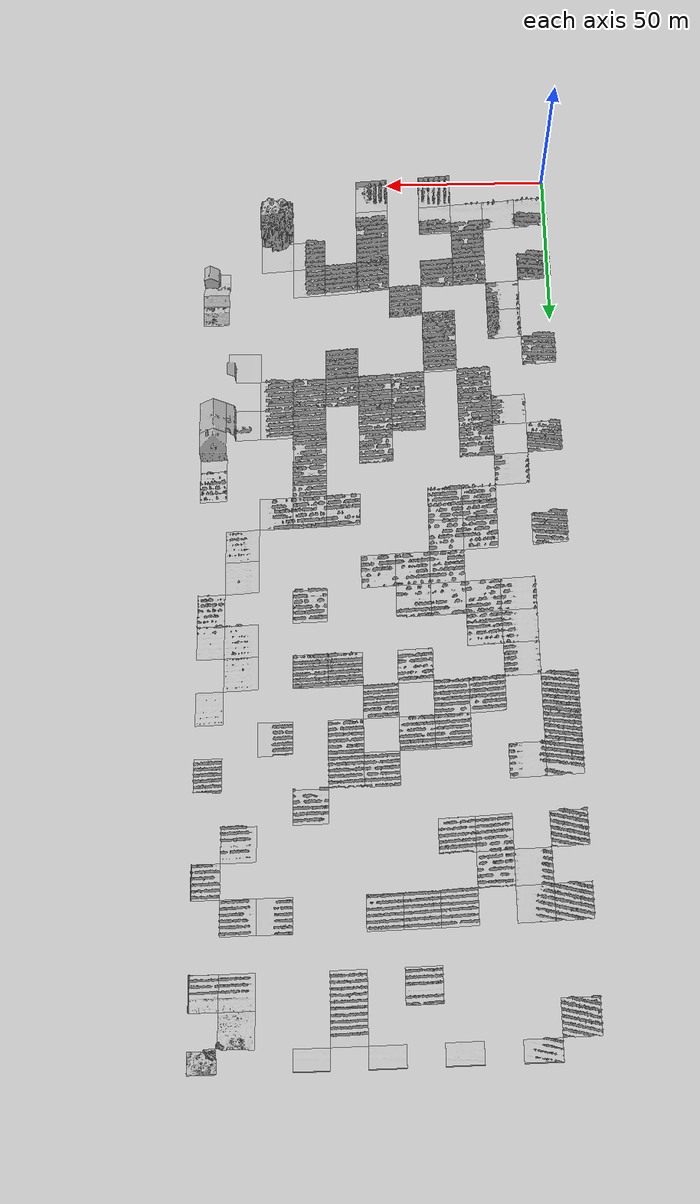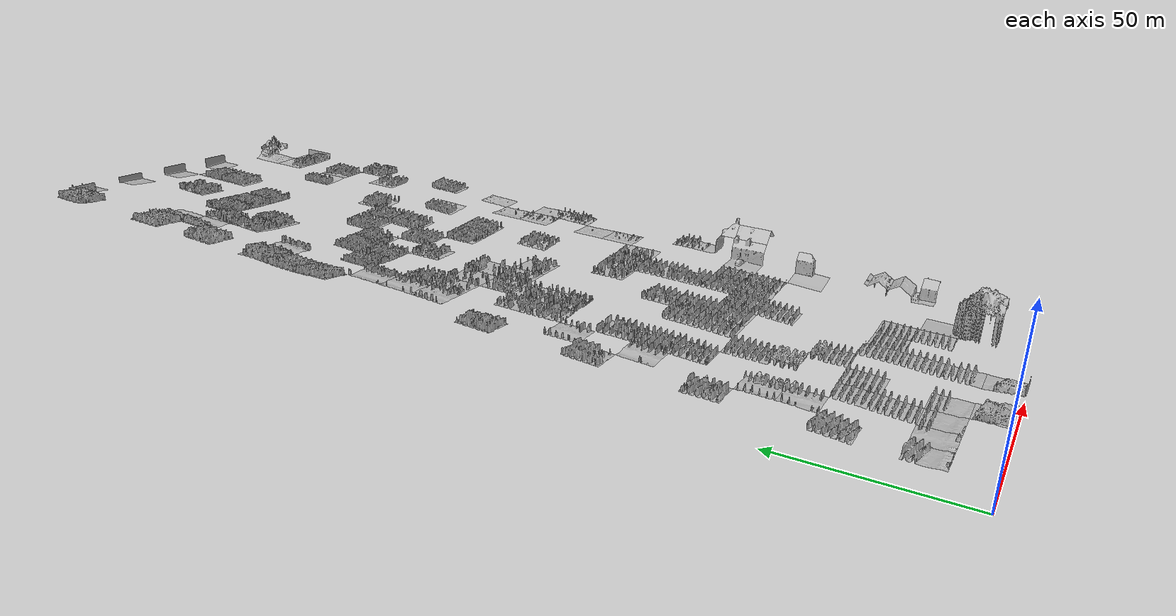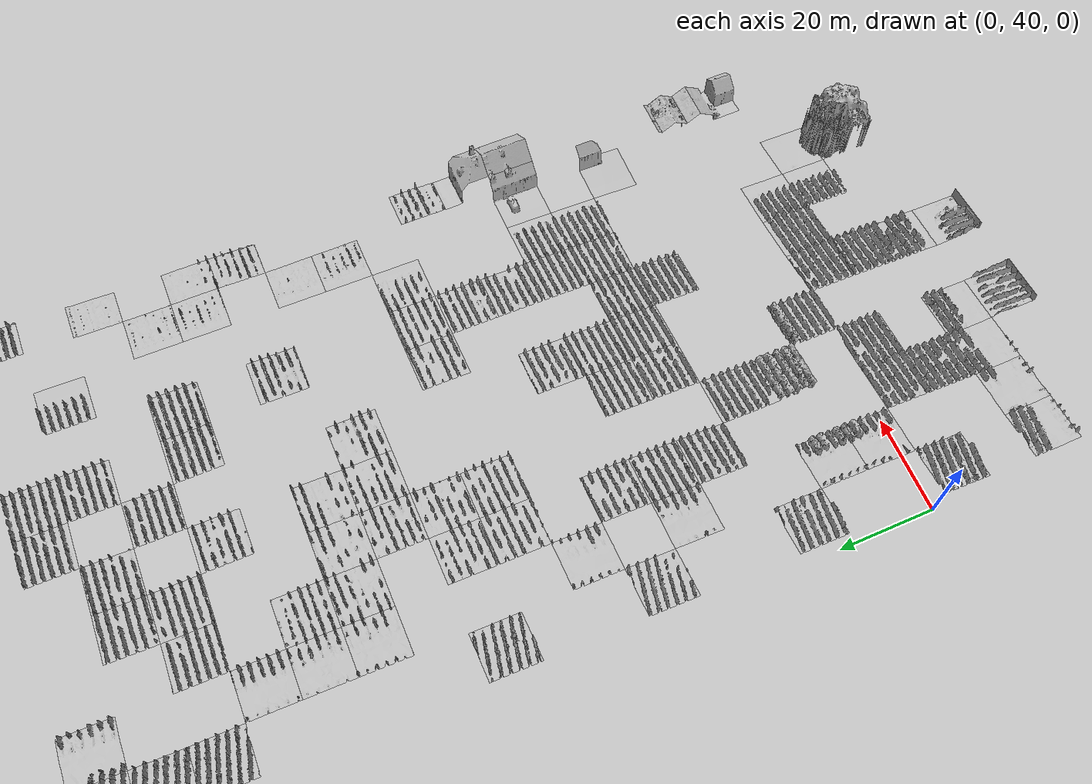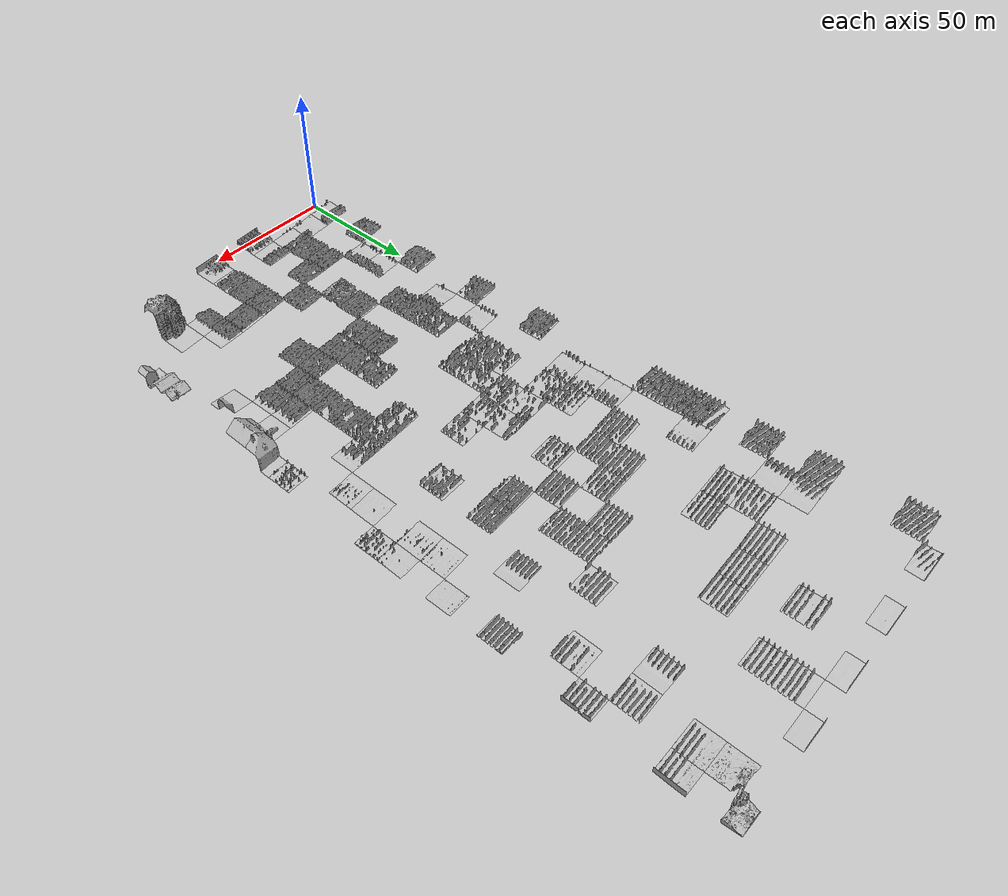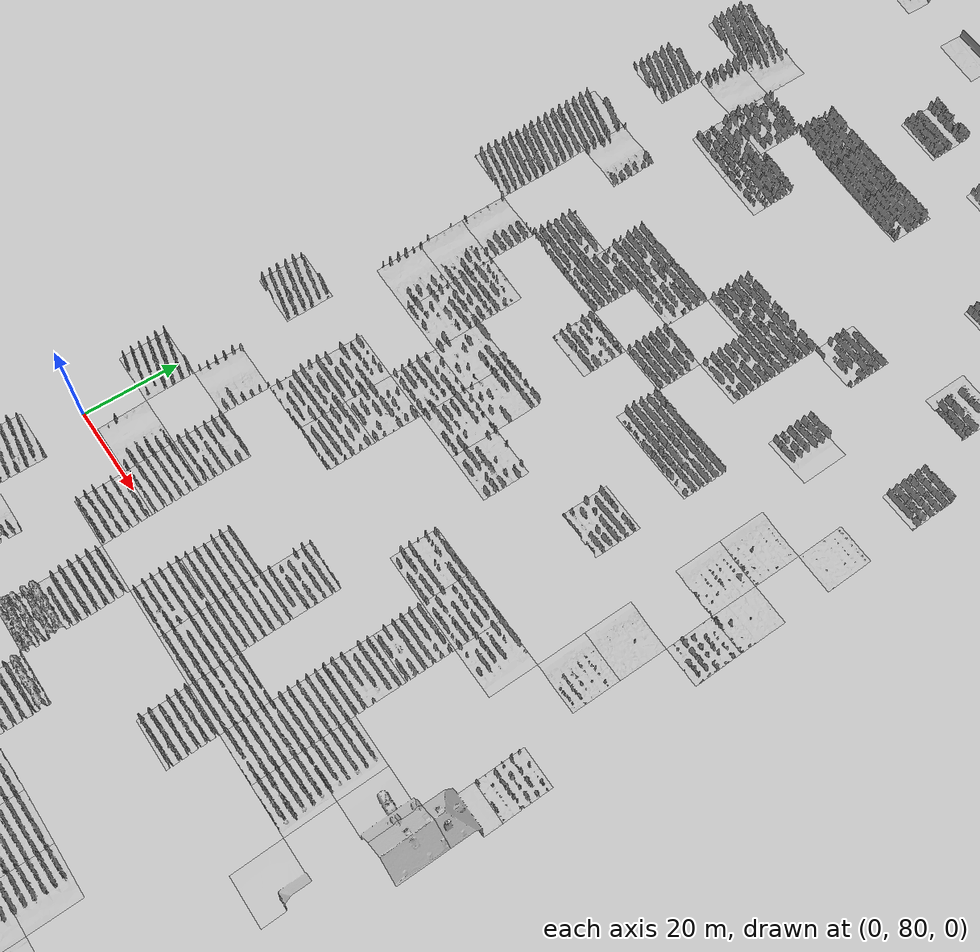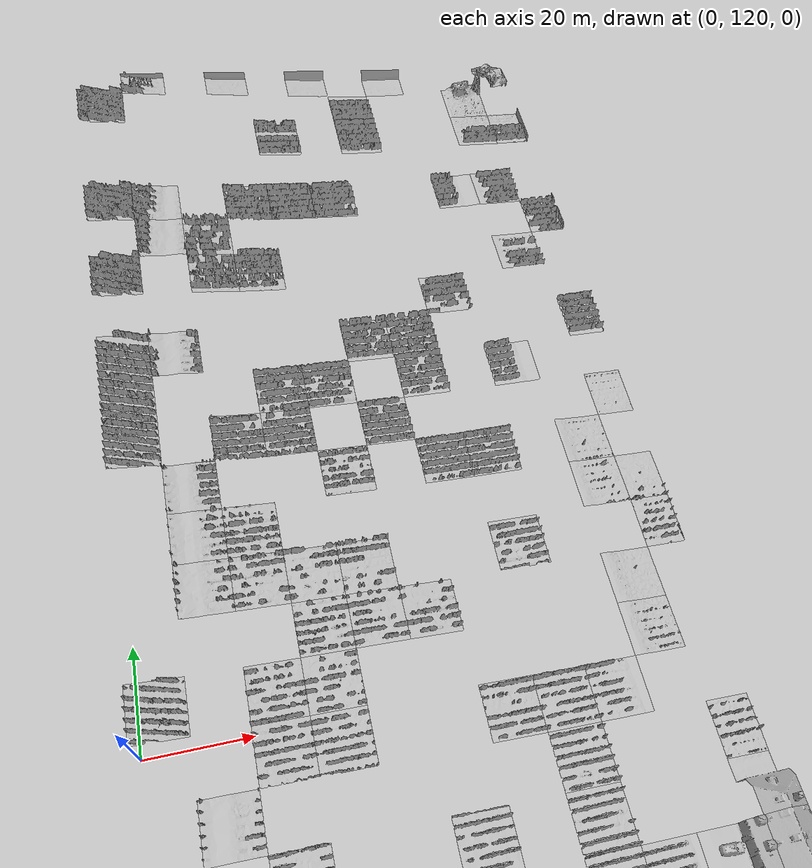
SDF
<sdf version="1.10">
 <world name="vineyard">
  <physics name="1ms" type="ignored">
   <max_step_size>0.001</max_step_size>
   <real_time_factor>1.0</real_time_factor>
  </physics>
  <plugin filename="gz-sim-physics-system" name="gz::sim::systems::Physics"/>
  <plugin filename="gz-sim-user-commands-system" name="gz::sim::systems::UserCommands"/>
  <plugin filename="gz-sim-scene-broadcaster-system" name="gz::sim::systems::SceneBroadcaster"/>
  <plugin filename="gz-sim-contact-system" name="gz::sim::systems::Contact"/>
  <scene><ambient>0.6 0.6 0.6 1.0</ambient><background>0.9 0.9 1.0 1.0</background></scene>
  <light type="directional" name="sun">
   <pose>0 0 10 0 0 0</pose>
   <diffuse>1.0 1.0 0.95 1.0</diffuse>
   <specular>0.5 0.5 0.45 1.0</specular>
   <attenuation>
    <range>1000</range>
    <constant>0.9</constant>
    <linear>0.01</linear>
    <quadratic>0.001</quadratic>
   </attenuation>
   <direction>0 -1 -1</direction>
  </light>
  <include><uri>model://map_10_10</uri><pose>10 10 0 0 0 0</pose></include>
  <include><uri>model://map_180_40</uri><pose>40 180 0 0 0 0</pose></include>
  <include><uri>model://map_260_0</uri><pose>0 260 0 0 0 0</pose></include>
  <include><uri>model://map_70_60</uri><pose>60 70 0 0 0 0</pose></include>
  <include><uri>model://map_10_30</uri><pose>30 10 0 0 0 0</pose></include>
  <include><uri>model://map_230_80</uri><pose>80 230 0 0 0 0</pose></include>
  <include><uri>model://map_20_80</uri><pose>80 20 0 0 0 0</pose></include>
  <include><uri>model://map_160_10</uri><pose>10 160 0 0 0 0</pose></include>
  <include><uri>model://map_50_30</uri><pose>30 50 0 0 0 0</pose></include>
  <include><uri>model://map_60_90</uri><pose>90 60 0 0 0 0</pose></include>
  <include><uri>model://map_30_0</uri><pose>0 30 0 0 0 0</pose></include>
  <include><uri>model://map_30_70</uri><pose>70 30 0 0 0 0</pose></include>
  <include><uri>model://map_50_10</uri><pose>10 50 0 0 0 0</pose></include>
  <include><uri>model://map_150_20</uri><pose>20 150 0 0 0 0</pose></include>
  <include><uri>model://map_190_60</uri><pose>60 190 0 0 0 0</pose></include>
  <include><uri>model://map_150_90</uri><pose>90 150 0 0 0 0</pose></include>
  <include><uri>model://map_140_100</uri><pose>100 140 0 0 0 0</pose></include>
  <include><uri>model://map_100_10</uri><pose>10 100 0 0 0 0</pose></include>
  <include><uri>model://map_210_30</uri><pose>30 210 0 0 0 0</pose></include>
  <include><uri>model://map_130_30</uri><pose>30 130 0 0 0 0</pose></include>
  <include><uri>model://map_170_20</uri><pose>20 170 0 0 0 0</pose></include>
  <include><uri>model://map_210_20</uri><pose>20 210 0 0 0 0</pose></include>
  <include><uri>model://map_230_90</uri><pose>90 230 0 0 0 0</pose></include>
  <include><uri>model://map_0_30</uri><pose>30 0 0 0 0 0</pose></include>
  <include><uri>model://map_190_50</uri><pose>50 190 0 0 0 0</pose></include>
  <include><uri>model://map_90_70</uri><pose>70 90 0 0 0 0</pose></include>
  <include><uri>model://map_250_90</uri><pose>90 250 0 0 0 0</pose></include>
  <include><uri>model://map_80_20</uri><pose>20 80 0 0 0 0</pose></include>
  <include><uri>model://map_70_20</uri><pose>20 70 0 0 0 0</pose></include>
  <include><uri>model://map_210_90</uri><pose>90 210 0 0 0 0</pose></include>
  <include><uri>model://map_270_100</uri><pose>100 270 0 0 0 0</pose></include>
  <include><uri>model://map_180_30</uri><pose>30 180 0 0 0 0</pose></include>
  <include><uri>model://map_130_40</uri><pose>40 130 0 0 0 0</pose></include>
  <include><uri>model://map_60_60</uri><pose>60 60 0 0 0 0</pose></include>
  <include><uri>model://map_40_40</uri><pose>40 40 0 0 0 0</pose></include>
  <include><uri>model://map_140_30</uri><pose>30 140 0 0 0 0</pose></include>
  <include><uri>model://map_120_30</uri><pose>30 120 0 0 0 0</pose></include>
  <include><uri>model://map_70_40</uri><pose>40 70 0 0 0 0</pose></include>
  <include><uri>model://map_270_50</uri><pose>50 270 0 0 0 0</pose></include>
  <include><uri>model://map_260_90</uri><pose>90 260 0 0 0 0</pose></include>
  <include><uri>model://map_80_90</uri><pose>90 80 0 0 0 0</pose></include>
  <include><uri>model://map_70_70</uri><pose>70 70 0 0 0 0</pose></include>
  <include><uri>model://map_70_80</uri><pose>80 70 0 0 0 0</pose></include>
  <include><uri>model://map_180_60</uri><pose>60 180 0 0 0 0</pose></include>
  <include><uri>model://map_190_10</uri><pose>10 190 0 0 0 0</pose></include>
  <include><uri>model://map_80_10</uri><pose>10 80 0 0 0 0</pose></include>
  <include><uri>model://map_210_0</uri><pose>0 210 0 0 0 0</pose></include>
  <include><uri>model://map_220_100</uri><pose>100 220 0 0 0 0</pose></include>
  <include><uri>model://map_170_0</uri><pose>0 170 0 0 0 0</pose></include>
  <include><uri>model://map_0_50</uri><pose>50 0 0 0 0 0</pose></include>
  <include><uri>model://map_180_0</uri><pose>0 180 0 0 0 0</pose></include>
  <include><uri>model://map_270_70</uri><pose>70 270 0 0 0 0</pose></include>
  <include><uri>model://map_140_40</uri><pose>40 140 0 0 0 0</pose></include>
  <include><uri>model://map_140_20</uri><pose>20 140 0 0 0 0</pose></include>
  <include><uri>model://map_70_50</uri><pose>50 70 0 0 0 0</pose></include>
  <include><uri>model://map_130_50</uri><pose>50 130 0 0 0 0</pose></include>
  <include><uri>model://map_40_10</uri><pose>10 40 0 0 0 0</pose></include>
  <include><uri>model://map_110_60</uri><pose>60 110 0 0 0 0</pose></include>
  <include><uri>model://map_60_0</uri><pose>0 60 0 0 0 0</pose></include>
  <include><uri>model://map_120_90</uri><pose>90 120 0 0 0 0</pose></include>
  <include><uri>model://map_150_100</uri><pose>100 150 0 0 0 0</pose></include>
  <include><uri>model://map_30_20</uri><pose>20 30 0 0 0 0</pose></include>
  <include><uri>model://map_80_80</uri><pose>80 80 0 0 0 0</pose></include>
  <include><uri>model://map_90_0</uri><pose>0 90 0 0 0 0</pose></include>
  <include><uri>model://map_270_30</uri><pose>30 270 0 0 0 0</pose></include>
  <include><uri>model://map_250_100</uri><pose>100 250 0 0 0 0</pose></include>
  <include><uri>model://map_260_60</uri><pose>60 260 0 0 0 0</pose></include>
  <include><uri>model://map_20_20</uri><pose>20 20 0 0 0 0</pose></include>
  <include><uri>model://map_10_50</uri><pose>50 10 0 0 0 0</pose></include>
  <include><uri>model://map_30_60</uri><pose>60 30 0 0 0 0</pose></include>
  <include><uri>model://map_160_90</uri><pose>90 160 0 0 0 0</pose></include>
  <include><uri>model://map_170_50</uri><pose>50 170 0 0 0 0</pose></include>
  <include><uri>model://map_190_100</uri><pose>100 190 0 0 0 0</pose></include>
  <include><uri>model://map_230_50</uri><pose>50 230 0 0 0 0</pose></include>
  <include><uri>model://map_30_100</uri><pose>100 30 0 0 0 0</pose></include>
  <include><uri>model://map_60_30</uri><pose>30 60 0 0 0 0</pose></include>
  <include><uri>model://map_90_20</uri><pose>20 90 0 0 0 0</pose></include>
  <include><uri>model://map_80_100</uri><pose>100 80 0 0 0 0</pose></include>
  <include><uri>model://map_110_80</uri><pose>80 110 0 0 0 0</pose></include>
  <include><uri>model://map_20_70</uri><pose>70 20 0 0 0 0</pose></include>
  <include><uri>model://map_100_100</uri><pose>100 100 0 0 0 0</pose></include>
  <include><uri>model://map_90_50</uri><pose>50 90 0 0 0 0</pose></include>
  <include><uri>model://map_120_0</uri><pose>0 120 0 0 0 0</pose></include>
  <include><uri>model://map_140_70</uri><pose>70 140 0 0 0 0</pose></include>
  <include><uri>model://map_170_100</uri><pose>100 170 0 0 0 0</pose></include>
  <include><uri>model://map_90_100</uri><pose>100 90 0 0 0 0</pose></include>
  <include><uri>model://map_120_20</uri><pose>20 120 0 0 0 0</pose></include>
  <include><uri>model://map_160_70</uri><pose>70 160 0 0 0 0</pose></include>
  <include><uri>model://map_230_10</uri><pose>10 230 0 0 0 0</pose></include>
  <include><uri>model://map_160_40</uri><pose>40 160 0 0 0 0</pose></include>
  <include><uri>model://map_10_80</uri><pose>80 10 0 0 0 0</pose></include>
  <include><uri>model://map_140_10</uri><pose>10 140 0 0 0 0</pose></include>
  <include><uri>model://map_250_60</uri><pose>60 250 0 0 0 0</pose></include>
  <include><uri>model://map_30_30</uri><pose>30 30 0 0 0 0</pose></include>
  <include><uri>model://map_220_20</uri><pose>20 220 0 0 0 0</pose></include>
  <include><uri>model://map_230_0</uri><pose>0 230 0 0 0 0</pose></include>
  <include><uri>model://map_80_50</uri><pose>50 80 0 0 0 0</pose></include>
  <include><uri>model://map_80_40</uri><pose>40 80 0 0 0 0</pose></include>
  <include><uri>model://map_230_30</uri><pose>30 230 0 0 0 0</pose></include>
  <include><uri>model://map_10_20</uri><pose>20 10 0 0 0 0</pose></include>
  <include><uri>model://map_150_10</uri><pose>10 150 0 0 0 0</pose></include>
  <include><uri>model://map_200_70</uri><pose>70 200 0 0 0 0</pose></include>
  <include><uri>model://map_220_10</uri><pose>10 220 0 0 0 0</pose></include>
  <include><uri>model://map_180_80</uri><pose>80 180 0 0 0 0</pose></include>
  <include><uri>model://map_40_100</uri><pose>100 40 0 0 0 0</pose></include>
  <include><uri>model://map_230_40</uri><pose>40 230 0 0 0 0</pose></include>
  <include><uri>model://map_130_90</uri><pose>90 130 0 0 0 0</pose></include>
  <include><uri>model://map_110_70</uri><pose>70 110 0 0 0 0</pose></include>
  <include><uri>model://map_170_30</uri><pose>30 170 0 0 0 0</pose></include>
  <include><uri>model://map_160_60</uri><pose>60 160 0 0 0 0</pose></include>
  <include><uri>model://map_10_0</uri><pose>0 10 0 0 0 0</pose></include>
  <include><uri>model://map_100_70</uri><pose>70 100 0 0 0 0</pose></include>
  <include><uri>model://map_250_40</uri><pose>40 250 0 0 0 0</pose></include>
  <include><uri>model://map_270_10</uri><pose>10 270 0 0 0 0</pose></include>
  <include><uri>model://map_110_20</uri><pose>20 110 0 0 0 0</pose></include>
  <include><uri>model://map_30_50</uri><pose>50 30 0 0 0 0</pose></include>
  <include><uri>model://map_110_30</uri><pose>30 110 0 0 0 0</pose></include>
  <include><uri>model://map_80_70</uri><pose>70 80 0 0 0 0</pose></include>
  <include><uri>model://map_20_50</uri><pose>50 20 0 0 0 0</pose></include>
  <include><uri>model://map_190_0</uri><pose>0 190 0 0 0 0</pose></include>
 </world>
</sdf>

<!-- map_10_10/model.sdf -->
<sdf version="1.10">
    <model name="map_10_10">
        <link name="map_10_10_link">
            <visual name="map_10_10_visual">
                <geometry>
                    <mesh>
                        <uri>meshes/visual/map_10_10.obj</uri>
                    </mesh>
                </geometry>
            </visual>
            <collision name="map_10_10_collision">
                <surface>
                    <friction>
                        <ode>
                            <mu>2.316343837943928</mu>
                            <mu2>2.316343837943928</mu2>
                        </ode>
                        <bullet>
                            <friction>2.316343837943928</friction>
                            <friction2>2.316343837943928</friction2>
                        </bullet>
                    </friction>
                </surface>
                <geometry>
                    <mesh>
                        <uri>meshes/visual/map_10_10.obj</uri>
                    </mesh>
                </geometry>
            </collision>
        </link>
        <static>True</static>
    </model>
</sdf>

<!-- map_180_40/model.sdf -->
<sdf version="1.10">
    <model name="map_180_40">
        <link name="map_180_40_link">
            <visual name="map_180_40_visual">
                <geometry>
                    <mesh>
                        <uri>meshes/visual/map_180_40.obj</uri>
                    </mesh>
                </geometry>
            </visual>
            <collision name="map_180_40_collision">
                <surface>
                    <friction>
                        <ode>
                            <mu>2.316343837943928</mu>
                            <mu2>2.316343837943928</mu2>
                        </ode>
                        <bullet>
                            <friction>2.316343837943928</friction>
                            <friction2>2.316343837943928</friction2>
                        </bullet>
                    </friction>
                </surface>
                <geometry>
                    <mesh>
                        <uri>meshes/visual/map_180_40.obj</uri>
                    </mesh>
                </geometry>
            </collision>
        </link>
        <static>True</static>
    </model>
</sdf>

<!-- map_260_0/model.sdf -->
<sdf version="1.10">
    <model name="map_260_0">
        <link name="map_260_0_link">
            <visual name="map_260_0_visual">
                <geometry>
                    <mesh>
                        <uri>meshes/visual/map_260_0.obj</uri>
                    </mesh>
                </geometry>
            </visual>
            <collision name="map_260_0_collision">
                <surface>
                    <friction>
                        <ode>
                            <mu>2.316343837943928</mu>
                            <mu2>2.316343837943928</mu2>
                        </ode>
                        <bullet>
                            <friction>2.316343837943928</friction>
                            <friction2>2.316343837943928</friction2>
                        </bullet>
                    </friction>
                </surface>
                <geometry>
                    <mesh>
                        <uri>meshes/visual/map_260_0.obj</uri>
                    </mesh>
                </geometry>
            </collision>
        </link>
        <static>True</static>
    </model>
</sdf>

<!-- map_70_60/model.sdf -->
<sdf version="1.10">
    <model name="map_70_60">
        <link name="map_70_60_link">
            <visual name="map_70_60_visual">
                <geometry>
                    <mesh>
                        <uri>meshes/visual/map_70_60.obj</uri>
                    </mesh>
                </geometry>
            </visual>
            <collision name="map_70_60_collision">
                <surface>
                    <friction>
                        <ode>
                            <mu>2.316343837943928</mu>
                            <mu2>2.316343837943928</mu2>
                        </ode>
                        <bullet>
                            <friction>2.316343837943928</friction>
                            <friction2>2.316343837943928</friction2>
                        </bullet>
                    </friction>
                </surface>
                <geometry>
                    <mesh>
                        <uri>meshes/visual/map_70_60.obj</uri>
                    </mesh>
                </geometry>
            </collision>
        </link>
        <static>True</static>
    </model>
</sdf>

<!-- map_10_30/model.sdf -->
<sdf version="1.10">
    <model name="map_10_30">
        <link name="map_10_30_link">
            <visual name="map_10_30_visual">
                <geometry>
                    <mesh>
                        <uri>meshes/visual/map_10_30.obj</uri>
                    </mesh>
                </geometry>
            </visual>
            <collision name="map_10_30_collision">
                <surface>
                    <friction>
                        <ode>
                            <mu>2.316343837943928</mu>
                            <mu2>2.316343837943928</mu2>
                        </ode>
                        <bullet>
                            <friction>2.316343837943928</friction>
                            <friction2>2.316343837943928</friction2>
                        </bullet>
                    </friction>
                </surface>
                <geometry>
                    <mesh>
                        <uri>meshes/visual/map_10_30.obj</uri>
                    </mesh>
                </geometry>
            </collision>
        </link>
        <static>True</static>
    </model>
</sdf>

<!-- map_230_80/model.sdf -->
<sdf version="1.10">
    <model name="map_230_80">
        <link name="map_230_80_link">
            <visual name="map_230_80_visual">
                <geometry>
                    <mesh>
                        <uri>meshes/visual/map_230_80.obj</uri>
                    </mesh>
                </geometry>
            </visual>
            <collision name="map_230_80_collision">
                <surface>
                    <friction>
                        <ode>
                            <mu>2.316343837943928</mu>
                            <mu2>2.316343837943928</mu2>
                        </ode>
                        <bullet>
                            <friction>2.316343837943928</friction>
                            <friction2>2.316343837943928</friction2>
                        </bullet>
                    </friction>
                </surface>
                <geometry>
                    <mesh>
                        <uri>meshes/visual/map_230_80.obj</uri>
                    </mesh>
                </geometry>
            </collision>
        </link>
        <static>True</static>
    </model>
</sdf>

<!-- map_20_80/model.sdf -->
<sdf version="1.10">
    <model name="map_20_80">
        <link name="map_20_80_link">
            <visual name="map_20_80_visual">
                <geometry>
                    <mesh>
                        <uri>meshes/visual/map_20_80.obj</uri>
                    </mesh>
                </geometry>
            </visual>
            <collision name="map_20_80_collision">
                <surface>
                    <friction>
                        <ode>
                            <mu>2.316343837943928</mu>
                            <mu2>2.316343837943928</mu2>
                        </ode>
                        <bullet>
                            <friction>2.316343837943928</friction>
                            <friction2>2.316343837943928</friction2>
                        </bullet>
                    </friction>
                </surface>
                <geometry>
                    <mesh>
                        <uri>meshes/visual/map_20_80.obj</uri>
                    </mesh>
                </geometry>
            </collision>
        </link>
        <static>True</static>
    </model>
</sdf>

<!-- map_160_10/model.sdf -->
<sdf version="1.10">
    <model name="map_160_10">
        <link name="map_160_10_link">
            <visual name="map_160_10_visual">
                <geometry>
                    <mesh>
                        <uri>meshes/visual/map_160_10.obj</uri>
                    </mesh>
                </geometry>
            </visual>
            <collision name="map_160_10_collision">
                <surface>
                    <friction>
                        <ode>
                            <mu>2.316343837943928</mu>
                            <mu2>2.316343837943928</mu2>
                        </ode>
                        <bullet>
                            <friction>2.316343837943928</friction>
                            <friction2>2.316343837943928</friction2>
                        </bullet>
                    </friction>
                </surface>
                <geometry>
                    <mesh>
                        <uri>meshes/visual/map_160_10.obj</uri>
                    </mesh>
                </geometry>
            </collision>
        </link>
        <static>True</static>
    </model>
</sdf>

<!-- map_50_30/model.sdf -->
<sdf version="1.10">
    <model name="map_50_30">
        <link name="map_50_30_link">
            <visual name="map_50_30_visual">
                <geometry>
                    <mesh>
                        <uri>meshes/visual/map_50_30.obj</uri>
                    </mesh>
                </geometry>
            </visual>
            <collision name="map_50_30_collision">
                <surface>
                    <friction>
                        <ode>
                            <mu>2.316343837943928</mu>
                            <mu2>2.316343837943928</mu2>
                        </ode>
                        <bullet>
                            <friction>2.316343837943928</friction>
                            <friction2>2.316343837943928</friction2>
                        </bullet>
                    </friction>
                </surface>
                <geometry>
                    <mesh>
                        <uri>meshes/visual/map_50_30.obj</uri>
                    </mesh>
                </geometry>
            </collision>
        </link>
        <static>True</static>
    </model>
</sdf>

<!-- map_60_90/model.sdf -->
<sdf version="1.10">
    <model name="map_60_90">
        <link name="map_60_90_link">
            <visual name="map_60_90_visual">
                <geometry>
                    <mesh>
                        <uri>meshes/visual/map_60_90.obj</uri>
                    </mesh>
                </geometry>
            </visual>
            <collision name="map_60_90_collision">
                <surface>
                    <friction>
                        <ode>
                            <mu>2.316343837943928</mu>
                            <mu2>2.316343837943928</mu2>
                        </ode>
                        <bullet>
                            <friction>2.316343837943928</friction>
                            <friction2>2.316343837943928</friction2>
                        </bullet>
                    </friction>
                </surface>
                <geometry>
                    <mesh>
                        <uri>meshes/visual/map_60_90.obj</uri>
                    </mesh>
                </geometry>
            </collision>
        </link>
        <static>True</static>
    </model>
</sdf>

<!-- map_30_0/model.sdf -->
<sdf version="1.10">
    <model name="map_30_0">
        <link name="map_30_0_link">
            <visual name="map_30_0_visual">
                <geometry>
                    <mesh>
                        <uri>meshes/visual/map_30_0.obj</uri>
                    </mesh>
                </geometry>
            </visual>
            <collision name="map_30_0_collision">
                <surface>
                    <friction>
                        <ode>
                            <mu>2.316343837943928</mu>
                            <mu2>2.316343837943928</mu2>
                        </ode>
                        <bullet>
                            <friction>2.316343837943928</friction>
                            <friction2>2.316343837943928</friction2>
                        </bullet>
                    </friction>
                </surface>
                <geometry>
                    <mesh>
                        <uri>meshes/visual/map_30_0.obj</uri>
                    </mesh>
                </geometry>
            </collision>
        </link>
        <static>True</static>
    </model>
</sdf>

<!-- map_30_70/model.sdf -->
<sdf version="1.10">
    <model name="map_30_70">
        <link name="map_30_70_link">
            <visual name="map_30_70_visual">
                <geometry>
                    <mesh>
                        <uri>meshes/visual/map_30_70.obj</uri>
                    </mesh>
                </geometry>
            </visual>
            <collision name="map_30_70_collision">
                <surface>
                    <friction>
                        <ode>
                            <mu>2.316343837943928</mu>
                            <mu2>2.316343837943928</mu2>
                        </ode>
                        <bullet>
                            <friction>2.316343837943928</friction>
                            <friction2>2.316343837943928</friction2>
                        </bullet>
                    </friction>
                </surface>
                <geometry>
                    <mesh>
                        <uri>meshes/visual/map_30_70.obj</uri>
                    </mesh>
                </geometry>
            </collision>
        </link>
        <static>True</static>
    </model>
</sdf>

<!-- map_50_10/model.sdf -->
<sdf version="1.10">
    <model name="map_50_10">
        <link name="map_50_10_link">
            <visual name="map_50_10_visual">
                <geometry>
                    <mesh>
                        <uri>meshes/visual/map_50_10.obj</uri>
                    </mesh>
                </geometry>
            </visual>
            <collision name="map_50_10_collision">
                <surface>
                    <friction>
                        <ode>
                            <mu>2.316343837943928</mu>
                            <mu2>2.316343837943928</mu2>
                        </ode>
                        <bullet>
                            <friction>2.316343837943928</friction>
                            <friction2>2.316343837943928</friction2>
                        </bullet>
                    </friction>
                </surface>
                <geometry>
                    <mesh>
                        <uri>meshes/visual/map_50_10.obj</uri>
                    </mesh>
                </geometry>
            </collision>
        </link>
        <static>True</static>
    </model>
</sdf>

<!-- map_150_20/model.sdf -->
<sdf version="1.10">
    <model name="map_150_20">
        <link name="map_150_20_link">
            <visual name="map_150_20_visual">
                <geometry>
                    <mesh>
                        <uri>meshes/visual/map_150_20.obj</uri>
                    </mesh>
                </geometry>
            </visual>
            <collision name="map_150_20_collision">
                <surface>
                    <friction>
                        <ode>
                            <mu>2.316343837943928</mu>
                            <mu2>2.316343837943928</mu2>
                        </ode>
                        <bullet>
                            <friction>2.316343837943928</friction>
                            <friction2>2.316343837943928</friction2>
                        </bullet>
                    </friction>
                </surface>
                <geometry>
                    <mesh>
                        <uri>meshes/visual/map_150_20.obj</uri>
                    </mesh>
                </geometry>
            </collision>
        </link>
        <static>True</static>
    </model>
</sdf>

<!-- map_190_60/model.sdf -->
<sdf version="1.10">
    <model name="map_190_60">
        <link name="map_190_60_link">
            <visual name="map_190_60_visual">
                <geometry>
                    <mesh>
                        <uri>meshes/visual/map_190_60.obj</uri>
                    </mesh>
                </geometry>
            </visual>
            <collision name="map_190_60_collision">
                <surface>
                    <friction>
                        <ode>
                            <mu>2.316343837943928</mu>
                            <mu2>2.316343837943928</mu2>
                        </ode>
                        <bullet>
                            <friction>2.316343837943928</friction>
                            <friction2>2.316343837943928</friction2>
                        </bullet>
                    </friction>
                </surface>
                <geometry>
                    <mesh>
                        <uri>meshes/visual/map_190_60.obj</uri>
                    </mesh>
                </geometry>
            </collision>
        </link>
        <static>True</static>
    </model>
</sdf>

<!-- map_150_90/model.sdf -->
<sdf version="1.10">
    <model name="map_150_90">
        <link name="map_150_90_link">
            <visual name="map_150_90_visual">
                <geometry>
                    <mesh>
                        <uri>meshes/visual/map_150_90.obj</uri>
                    </mesh>
                </geometry>
            </visual>
            <collision name="map_150_90_collision">
                <surface>
                    <friction>
                        <ode>
                            <mu>2.316343837943928</mu>
                            <mu2>2.316343837943928</mu2>
                        </ode>
                        <bullet>
                            <friction>2.316343837943928</friction>
                            <friction2>2.316343837943928</friction2>
                        </bullet>
                    </friction>
                </surface>
                <geometry>
                    <mesh>
                        <uri>meshes/visual/map_150_90.obj</uri>
                    </mesh>
                </geometry>
            </collision>
        </link>
        <static>True</static>
    </model>
</sdf>

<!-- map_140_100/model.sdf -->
<sdf version="1.10">
    <model name="map_140_100">
        <link name="map_140_100_link">
            <visual name="map_140_100_visual">
                <geometry>
                    <mesh>
                        <uri>meshes/visual/map_140_100.obj</uri>
                    </mesh>
                </geometry>
            </visual>
            <collision name="map_140_100_collision">
                <surface>
                    <friction>
                        <ode>
                            <mu>2.316343837943928</mu>
                            <mu2>2.316343837943928</mu2>
                        </ode>
                        <bullet>
                            <friction>2.316343837943928</friction>
                            <friction2>2.316343837943928</friction2>
                        </bullet>
                    </friction>
                </surface>
                <geometry>
                    <mesh>
                        <uri>meshes/visual/map_140_100.obj</uri>
                    </mesh>
                </geometry>
            </collision>
        </link>
        <static>True</static>
    </model>
</sdf>

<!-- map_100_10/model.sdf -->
<sdf version="1.10">
    <model name="map_100_10">
        <link name="map_100_10_link">
            <visual name="map_100_10_visual">
                <geometry>
                    <mesh>
                        <uri>meshes/visual/map_100_10.obj</uri>
                    </mesh>
                </geometry>
            </visual>
            <collision name="map_100_10_collision">
                <surface>
                    <friction>
                        <ode>
                            <mu>2.316343837943928</mu>
                            <mu2>2.316343837943928</mu2>
                        </ode>
                        <bullet>
                            <friction>2.316343837943928</friction>
                            <friction2>2.316343837943928</friction2>
                        </bullet>
                    </friction>
                </surface>
                <geometry>
                    <mesh>
                        <uri>meshes/visual/map_100_10.obj</uri>
                    </mesh>
                </geometry>
            </collision>
        </link>
        <static>True</static>
    </model>
</sdf>

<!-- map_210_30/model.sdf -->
<sdf version="1.10">
    <model name="map_210_30">
        <link name="map_210_30_link">
            <visual name="map_210_30_visual">
                <geometry>
                    <mesh>
                        <uri>meshes/visual/map_210_30.obj</uri>
                    </mesh>
                </geometry>
            </visual>
            <collision name="map_210_30_collision">
                <surface>
                    <friction>
                        <ode>
                            <mu>2.316343837943928</mu>
                            <mu2>2.316343837943928</mu2>
                        </ode>
                        <bullet>
                            <friction>2.316343837943928</friction>
                            <friction2>2.316343837943928</friction2>
                        </bullet>
                    </friction>
                </surface>
                <geometry>
                    <mesh>
                        <uri>meshes/visual/map_210_30.obj</uri>
                    </mesh>
                </geometry>
            </collision>
        </link>
        <static>True</static>
    </model>
</sdf>

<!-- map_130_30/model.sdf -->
<sdf version="1.10">
    <model name="map_130_30">
        <link name="map_130_30_link">
            <visual name="map_130_30_visual">
                <geometry>
                    <mesh>
                        <uri>meshes/visual/map_130_30.obj</uri>
                    </mesh>
                </geometry>
            </visual>
            <collision name="map_130_30_collision">
                <surface>
                    <friction>
                        <ode>
                            <mu>2.316343837943928</mu>
                            <mu2>2.316343837943928</mu2>
                        </ode>
                        <bullet>
                            <friction>2.316343837943928</friction>
                            <friction2>2.316343837943928</friction2>
                        </bullet>
                    </friction>
                </surface>
                <geometry>
                    <mesh>
                        <uri>meshes/visual/map_130_30.obj</uri>
                    </mesh>
                </geometry>
            </collision>
        </link>
        <static>True</static>
    </model>
</sdf>

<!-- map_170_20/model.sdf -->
<sdf version="1.10">
    <model name="map_170_20">
        <link name="map_170_20_link">
            <visual name="map_170_20_visual">
                <geometry>
                    <mesh>
                        <uri>meshes/visual/map_170_20.obj</uri>
                    </mesh>
                </geometry>
            </visual>
            <collision name="map_170_20_collision">
                <surface>
                    <friction>
                        <ode>
                            <mu>2.316343837943928</mu>
                            <mu2>2.316343837943928</mu2>
                        </ode>
                        <bullet>
                            <friction>2.316343837943928</friction>
                            <friction2>2.316343837943928</friction2>
                        </bullet>
                    </friction>
                </surface>
                <geometry>
                    <mesh>
                        <uri>meshes/visual/map_170_20.obj</uri>
                    </mesh>
                </geometry>
            </collision>
        </link>
        <static>True</static>
    </model>
</sdf>

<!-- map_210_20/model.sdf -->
<sdf version="1.10">
    <model name="map_210_20">
        <link name="map_210_20_link">
            <visual name="map_210_20_visual">
                <geometry>
                    <mesh>
                        <uri>meshes/visual/map_210_20.obj</uri>
                    </mesh>
                </geometry>
            </visual>
            <collision name="map_210_20_collision">
                <surface>
                    <friction>
                        <ode>
                            <mu>2.316343837943928</mu>
                            <mu2>2.316343837943928</mu2>
                        </ode>
                        <bullet>
                            <friction>2.316343837943928</friction>
                            <friction2>2.316343837943928</friction2>
                        </bullet>
                    </friction>
                </surface>
                <geometry>
                    <mesh>
                        <uri>meshes/visual/map_210_20.obj</uri>
                    </mesh>
                </geometry>
            </collision>
        </link>
        <static>True</static>
    </model>
</sdf>

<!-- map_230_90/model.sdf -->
<sdf version="1.10">
    <model name="map_230_90">
        <link name="map_230_90_link">
            <visual name="map_230_90_visual">
                <geometry>
                    <mesh>
                        <uri>meshes/visual/map_230_90.obj</uri>
                    </mesh>
                </geometry>
            </visual>
            <collision name="map_230_90_collision">
                <surface>
                    <friction>
                        <ode>
                            <mu>2.316343837943928</mu>
                            <mu2>2.316343837943928</mu2>
                        </ode>
                        <bullet>
                            <friction>2.316343837943928</friction>
                            <friction2>2.316343837943928</friction2>
                        </bullet>
                    </friction>
                </surface>
                <geometry>
                    <mesh>
                        <uri>meshes/visual/map_230_90.obj</uri>
                    </mesh>
                </geometry>
            </collision>
        </link>
        <static>True</static>
    </model>
</sdf>

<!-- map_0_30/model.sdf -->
<sdf version="1.10">
    <model name="map_0_30">
        <link name="map_0_30_link">
            <visual name="map_0_30_visual">
                <geometry>
                    <mesh>
                        <uri>meshes/visual/map_0_30.obj</uri>
                    </mesh>
                </geometry>
            </visual>
            <collision name="map_0_30_collision">
                <surface>
                    <friction>
                        <ode>
                            <mu>2.316343837943928</mu>
                            <mu2>2.316343837943928</mu2>
                        </ode>
                        <bullet>
                            <friction>2.316343837943928</friction>
                            <friction2>2.316343837943928</friction2>
                        </bullet>
                    </friction>
                </surface>
                <geometry>
                    <mesh>
                        <uri>meshes/visual/map_0_30.obj</uri>
                    </mesh>
                </geometry>
            </collision>
        </link>
        <static>True</static>
    </model>
</sdf>

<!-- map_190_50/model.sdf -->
<sdf version="1.10">
    <model name="map_190_50">
        <link name="map_190_50_link">
            <visual name="map_190_50_visual">
                <geometry>
                    <mesh>
                        <uri>meshes/visual/map_190_50.obj</uri>
                    </mesh>
                </geometry>
            </visual>
            <collision name="map_190_50_collision">
                <surface>
                    <friction>
                        <ode>
                            <mu>2.316343837943928</mu>
                            <mu2>2.316343837943928</mu2>
                        </ode>
                        <bullet>
                            <friction>2.316343837943928</friction>
                            <friction2>2.316343837943928</friction2>
                        </bullet>
                    </friction>
                </surface>
                <geometry>
                    <mesh>
                        <uri>meshes/visual/map_190_50.obj</uri>
                    </mesh>
                </geometry>
            </collision>
        </link>
        <static>True</static>
    </model>
</sdf>

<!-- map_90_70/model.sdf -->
<sdf version="1.10">
    <model name="map_90_70">
        <link name="map_90_70_link">
            <visual name="map_90_70_visual">
                <geometry>
                    <mesh>
                        <uri>meshes/visual/map_90_70.obj</uri>
                    </mesh>
                </geometry>
            </visual>
            <collision name="map_90_70_collision">
                <surface>
                    <friction>
                        <ode>
                            <mu>2.316343837943928</mu>
                            <mu2>2.316343837943928</mu2>
                        </ode>
                        <bullet>
                            <friction>2.316343837943928</friction>
                            <friction2>2.316343837943928</friction2>
                        </bullet>
                    </friction>
                </surface>
                <geometry>
                    <mesh>
                        <uri>meshes/visual/map_90_70.obj</uri>
                    </mesh>
                </geometry>
            </collision>
        </link>
        <static>True</static>
    </model>
</sdf>

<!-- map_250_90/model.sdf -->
<sdf version="1.10">
    <model name="map_250_90">
        <link name="map_250_90_link">
            <visual name="map_250_90_visual">
                <geometry>
                    <mesh>
                        <uri>meshes/visual/map_250_90.obj</uri>
                    </mesh>
                </geometry>
            </visual>
            <collision name="map_250_90_collision">
                <surface>
                    <friction>
                        <ode>
                            <mu>2.316343837943928</mu>
                            <mu2>2.316343837943928</mu2>
                        </ode>
                        <bullet>
                            <friction>2.316343837943928</friction>
                            <friction2>2.316343837943928</friction2>
                        </bullet>
                    </friction>
                </surface>
                <geometry>
                    <mesh>
                        <uri>meshes/visual/map_250_90.obj</uri>
                    </mesh>
                </geometry>
            </collision>
        </link>
        <static>True</static>
    </model>
</sdf>

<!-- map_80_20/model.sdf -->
<sdf version="1.10">
    <model name="map_80_20">
        <link name="map_80_20_link">
            <visual name="map_80_20_visual">
                <geometry>
                    <mesh>
                        <uri>meshes/visual/map_80_20.obj</uri>
                    </mesh>
                </geometry>
            </visual>
            <collision name="map_80_20_collision">
                <surface>
                    <friction>
                        <ode>
                            <mu>2.316343837943928</mu>
                            <mu2>2.316343837943928</mu2>
                        </ode>
                        <bullet>
                            <friction>2.316343837943928</friction>
                            <friction2>2.316343837943928</friction2>
                        </bullet>
                    </friction>
                </surface>
                <geometry>
                    <mesh>
                        <uri>meshes/visual/map_80_20.obj</uri>
                    </mesh>
                </geometry>
            </collision>
        </link>
        <static>True</static>
    </model>
</sdf>

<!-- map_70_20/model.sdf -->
<sdf version="1.10">
    <model name="map_70_20">
        <link name="map_70_20_link">
            <visual name="map_70_20_visual">
                <geometry>
                    <mesh>
                        <uri>meshes/visual/map_70_20.obj</uri>
                    </mesh>
                </geometry>
            </visual>
            <collision name="map_70_20_collision">
                <surface>
                    <friction>
                        <ode>
                            <mu>2.316343837943928</mu>
                            <mu2>2.316343837943928</mu2>
                        </ode>
                        <bullet>
                            <friction>2.316343837943928</friction>
                            <friction2>2.316343837943928</friction2>
                        </bullet>
                    </friction>
                </surface>
                <geometry>
                    <mesh>
                        <uri>meshes/visual/map_70_20.obj</uri>
                    </mesh>
                </geometry>
            </collision>
        </link>
        <static>True</static>
    </model>
</sdf>

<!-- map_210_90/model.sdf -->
<sdf version="1.10">
    <model name="map_210_90">
        <link name="map_210_90_link">
            <visual name="map_210_90_visual">
                <geometry>
                    <mesh>
                        <uri>meshes/visual/map_210_90.obj</uri>
                    </mesh>
                </geometry>
            </visual>
            <collision name="map_210_90_collision">
                <surface>
                    <friction>
                        <ode>
                            <mu>2.316343837943928</mu>
                            <mu2>2.316343837943928</mu2>
                        </ode>
                        <bullet>
                            <friction>2.316343837943928</friction>
                            <friction2>2.316343837943928</friction2>
                        </bullet>
                    </friction>
                </surface>
                <geometry>
                    <mesh>
                        <uri>meshes/visual/map_210_90.obj</uri>
                    </mesh>
                </geometry>
            </collision>
        </link>
        <static>True</static>
    </model>
</sdf>

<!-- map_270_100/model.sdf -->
<sdf version="1.10">
    <model name="map_270_100">
        <link name="map_270_100_link">
            <visual name="map_270_100_visual">
                <geometry>
                    <mesh>
                        <uri>meshes/visual/map_270_100.obj</uri>
                    </mesh>
                </geometry>
            </visual>
            <collision name="map_270_100_collision">
                <surface>
                    <friction>
                        <ode>
                            <mu>2.316343837943928</mu>
                            <mu2>2.316343837943928</mu2>
                        </ode>
                        <bullet>
                            <friction>2.316343837943928</friction>
                            <friction2>2.316343837943928</friction2>
                        </bullet>
                    </friction>
                </surface>
                <geometry>
                    <mesh>
                        <uri>meshes/visual/map_270_100.obj</uri>
                    </mesh>
                </geometry>
            </collision>
        </link>
        <static>True</static>
    </model>
</sdf>

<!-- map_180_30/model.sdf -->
<sdf version="1.10">
    <model name="map_180_30">
        <link name="map_180_30_link">
            <visual name="map_180_30_visual">
                <geometry>
                    <mesh>
                        <uri>meshes/visual/map_180_30.obj</uri>
                    </mesh>
                </geometry>
            </visual>
            <collision name="map_180_30_collision">
                <surface>
                    <friction>
                        <ode>
                            <mu>2.316343837943928</mu>
                            <mu2>2.316343837943928</mu2>
                        </ode>
                        <bullet>
                            <friction>2.316343837943928</friction>
                            <friction2>2.316343837943928</friction2>
                        </bullet>
                    </friction>
                </surface>
                <geometry>
                    <mesh>
                        <uri>meshes/visual/map_180_30.obj</uri>
                    </mesh>
                </geometry>
            </collision>
        </link>
        <static>True</static>
    </model>
</sdf>

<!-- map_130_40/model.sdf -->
<sdf version="1.10">
    <model name="map_130_40">
        <link name="map_130_40_link">
            <visual name="map_130_40_visual">
                <geometry>
                    <mesh>
                        <uri>meshes/visual/map_130_40.obj</uri>
                    </mesh>
                </geometry>
            </visual>
            <collision name="map_130_40_collision">
                <surface>
                    <friction>
                        <ode>
                            <mu>2.316343837943928</mu>
                            <mu2>2.316343837943928</mu2>
                        </ode>
                        <bullet>
                            <friction>2.316343837943928</friction>
                            <friction2>2.316343837943928</friction2>
                        </bullet>
                    </friction>
                </surface>
                <geometry>
                    <mesh>
                        <uri>meshes/visual/map_130_40.obj</uri>
                    </mesh>
                </geometry>
            </collision>
        </link>
        <static>True</static>
    </model>
</sdf>

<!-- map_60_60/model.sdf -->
<sdf version="1.10">
    <model name="map_60_60">
        <link name="map_60_60_link">
            <visual name="map_60_60_visual">
                <geometry>
                    <mesh>
                        <uri>meshes/visual/map_60_60.obj</uri>
                    </mesh>
                </geometry>
            </visual>
            <collision name="map_60_60_collision">
                <surface>
                    <friction>
                        <ode>
                            <mu>2.316343837943928</mu>
                            <mu2>2.316343837943928</mu2>
                        </ode>
                        <bullet>
                            <friction>2.316343837943928</friction>
                            <friction2>2.316343837943928</friction2>
                        </bullet>
                    </friction>
                </surface>
                <geometry>
                    <mesh>
                        <uri>meshes/visual/map_60_60.obj</uri>
                    </mesh>
                </geometry>
            </collision>
        </link>
        <static>True</static>
    </model>
</sdf>

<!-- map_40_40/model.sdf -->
<sdf version="1.10">
    <model name="map_40_40">
        <link name="map_40_40_link">
            <visual name="map_40_40_visual">
                <geometry>
                    <mesh>
                        <uri>meshes/visual/map_40_40.obj</uri>
                    </mesh>
                </geometry>
            </visual>
            <collision name="map_40_40_collision">
                <surface>
                    <friction>
                        <ode>
                            <mu>2.316343837943928</mu>
                            <mu2>2.316343837943928</mu2>
                        </ode>
                        <bullet>
                            <friction>2.316343837943928</friction>
                            <friction2>2.316343837943928</friction2>
                        </bullet>
                    </friction>
                </surface>
                <geometry>
                    <mesh>
                        <uri>meshes/visual/map_40_40.obj</uri>
                    </mesh>
                </geometry>
            </collision>
        </link>
        <static>True</static>
    </model>
</sdf>

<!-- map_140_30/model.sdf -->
<sdf version="1.10">
    <model name="map_140_30">
        <link name="map_140_30_link">
            <visual name="map_140_30_visual">
                <geometry>
                    <mesh>
                        <uri>meshes/visual/map_140_30.obj</uri>
                    </mesh>
                </geometry>
            </visual>
            <collision name="map_140_30_collision">
                <surface>
                    <friction>
                        <ode>
                            <mu>2.316343837943928</mu>
                            <mu2>2.316343837943928</mu2>
                        </ode>
                        <bullet>
                            <friction>2.316343837943928</friction>
                            <friction2>2.316343837943928</friction2>
                        </bullet>
                    </friction>
                </surface>
                <geometry>
                    <mesh>
                        <uri>meshes/visual/map_140_30.obj</uri>
                    </mesh>
                </geometry>
            </collision>
        </link>
        <static>True</static>
    </model>
</sdf>

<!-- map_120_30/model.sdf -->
<sdf version="1.10">
    <model name="map_120_30">
        <link name="map_120_30_link">
            <visual name="map_120_30_visual">
                <geometry>
                    <mesh>
                        <uri>meshes/visual/map_120_30.obj</uri>
                    </mesh>
                </geometry>
            </visual>
            <collision name="map_120_30_collision">
                <surface>
                    <friction>
                        <ode>
                            <mu>2.316343837943928</mu>
                            <mu2>2.316343837943928</mu2>
                        </ode>
                        <bullet>
                            <friction>2.316343837943928</friction>
                            <friction2>2.316343837943928</friction2>
                        </bullet>
                    </friction>
                </surface>
                <geometry>
                    <mesh>
                        <uri>meshes/visual/map_120_30.obj</uri>
                    </mesh>
                </geometry>
            </collision>
        </link>
        <static>True</static>
    </model>
</sdf>

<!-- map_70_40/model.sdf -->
<sdf version="1.10">
    <model name="map_70_40">
        <link name="map_70_40_link">
            <visual name="map_70_40_visual">
                <geometry>
                    <mesh>
                        <uri>meshes/visual/map_70_40.obj</uri>
                    </mesh>
                </geometry>
            </visual>
            <collision name="map_70_40_collision">
                <surface>
                    <friction>
                        <ode>
                            <mu>2.316343837943928</mu>
                            <mu2>2.316343837943928</mu2>
                        </ode>
                        <bullet>
                            <friction>2.316343837943928</friction>
                            <friction2>2.316343837943928</friction2>
                        </bullet>
                    </friction>
                </surface>
                <geometry>
                    <mesh>
                        <uri>meshes/visual/map_70_40.obj</uri>
                    </mesh>
                </geometry>
            </collision>
        </link>
        <static>True</static>
    </model>
</sdf>

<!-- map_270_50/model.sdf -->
<sdf version="1.10">
    <model name="map_270_50">
        <link name="map_270_50_link">
            <visual name="map_270_50_visual">
                <geometry>
                    <mesh>
                        <uri>meshes/visual/map_270_50.obj</uri>
                    </mesh>
                </geometry>
            </visual>
            <collision name="map_270_50_collision">
                <surface>
                    <friction>
                        <ode>
                            <mu>2.316343837943928</mu>
                            <mu2>2.316343837943928</mu2>
                        </ode>
                        <bullet>
                            <friction>2.316343837943928</friction>
                            <friction2>2.316343837943928</friction2>
                        </bullet>
                    </friction>
                </surface>
                <geometry>
                    <mesh>
                        <uri>meshes/visual/map_270_50.obj</uri>
                    </mesh>
                </geometry>
            </collision>
        </link>
        <static>True</static>
    </model>
</sdf>

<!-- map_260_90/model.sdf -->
<sdf version="1.10">
    <model name="map_260_90">
        <link name="map_260_90_link">
            <visual name="map_260_90_visual">
                <geometry>
                    <mesh>
                        <uri>meshes/visual/map_260_90.obj</uri>
                    </mesh>
                </geometry>
            </visual>
            <collision name="map_260_90_collision">
                <surface>
                    <friction>
                        <ode>
                            <mu>2.316343837943928</mu>
                            <mu2>2.316343837943928</mu2>
                        </ode>
                        <bullet>
                            <friction>2.316343837943928</friction>
                            <friction2>2.316343837943928</friction2>
                        </bullet>
                    </friction>
                </surface>
                <geometry>
                    <mesh>
                        <uri>meshes/visual/map_260_90.obj</uri>
                    </mesh>
                </geometry>
            </collision>
        </link>
        <static>True</static>
    </model>
</sdf>

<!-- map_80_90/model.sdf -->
<sdf version="1.10">
    <model name="map_80_90">
        <link name="map_80_90_link">
            <visual name="map_80_90_visual">
                <geometry>
                    <mesh>
                        <uri>meshes/visual/map_80_90.obj</uri>
                    </mesh>
                </geometry>
            </visual>
            <collision name="map_80_90_collision">
                <surface>
                    <friction>
                        <ode>
                            <mu>2.316343837943928</mu>
                            <mu2>2.316343837943928</mu2>
                        </ode>
                        <bullet>
                            <friction>2.316343837943928</friction>
                            <friction2>2.316343837943928</friction2>
                        </bullet>
                    </friction>
                </surface>
                <geometry>
                    <mesh>
                        <uri>meshes/visual/map_80_90.obj</uri>
                    </mesh>
                </geometry>
            </collision>
        </link>
        <static>True</static>
    </model>
</sdf>

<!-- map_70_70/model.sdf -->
<sdf version="1.10">
    <model name="map_70_70">
        <link name="map_70_70_link">
            <visual name="map_70_70_visual">
                <geometry>
                    <mesh>
                        <uri>meshes/visual/map_70_70.obj</uri>
                    </mesh>
                </geometry>
            </visual>
            <collision name="map_70_70_collision">
                <surface>
                    <friction>
                        <ode>
                            <mu>2.316343837943928</mu>
                            <mu2>2.316343837943928</mu2>
                        </ode>
                        <bullet>
                            <friction>2.316343837943928</friction>
                            <friction2>2.316343837943928</friction2>
                        </bullet>
                    </friction>
                </surface>
                <geometry>
                    <mesh>
                        <uri>meshes/visual/map_70_70.obj</uri>
                    </mesh>
                </geometry>
            </collision>
        </link>
        <static>True</static>
    </model>
</sdf>

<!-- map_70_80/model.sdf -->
<sdf version="1.10">
    <model name="map_70_80">
        <link name="map_70_80_link">
            <visual name="map_70_80_visual">
                <geometry>
                    <mesh>
                        <uri>meshes/visual/map_70_80.obj</uri>
                    </mesh>
                </geometry>
            </visual>
            <collision name="map_70_80_collision">
                <surface>
                    <friction>
                        <ode>
                            <mu>2.316343837943928</mu>
                            <mu2>2.316343837943928</mu2>
                        </ode>
                        <bullet>
                            <friction>2.316343837943928</friction>
                            <friction2>2.316343837943928</friction2>
                        </bullet>
                    </friction>
                </surface>
                <geometry>
                    <mesh>
                        <uri>meshes/visual/map_70_80.obj</uri>
                    </mesh>
                </geometry>
            </collision>
        </link>
        <static>True</static>
    </model>
</sdf>

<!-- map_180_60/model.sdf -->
<sdf version="1.10">
    <model name="map_180_60">
        <link name="map_180_60_link">
            <visual name="map_180_60_visual">
                <geometry>
                    <mesh>
                        <uri>meshes/visual/map_180_60.obj</uri>
                    </mesh>
                </geometry>
            </visual>
            <collision name="map_180_60_collision">
                <surface>
                    <friction>
                        <ode>
                            <mu>2.316343837943928</mu>
                            <mu2>2.316343837943928</mu2>
                        </ode>
                        <bullet>
                            <friction>2.316343837943928</friction>
                            <friction2>2.316343837943928</friction2>
                        </bullet>
                    </friction>
                </surface>
                <geometry>
                    <mesh>
                        <uri>meshes/visual/map_180_60.obj</uri>
                    </mesh>
                </geometry>
            </collision>
        </link>
        <static>True</static>
    </model>
</sdf>

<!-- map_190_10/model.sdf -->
<sdf version="1.10">
    <model name="map_190_10">
        <link name="map_190_10_link">
            <visual name="map_190_10_visual">
                <geometry>
                    <mesh>
                        <uri>meshes/visual/map_190_10.obj</uri>
                    </mesh>
                </geometry>
            </visual>
            <collision name="map_190_10_collision">
                <surface>
                    <friction>
                        <ode>
                            <mu>2.316343837943928</mu>
                            <mu2>2.316343837943928</mu2>
                        </ode>
                        <bullet>
                            <friction>2.316343837943928</friction>
                            <friction2>2.316343837943928</friction2>
                        </bullet>
                    </friction>
                </surface>
                <geometry>
                    <mesh>
                        <uri>meshes/visual/map_190_10.obj</uri>
                    </mesh>
                </geometry>
            </collision>
        </link>
        <static>True</static>
    </model>
</sdf>

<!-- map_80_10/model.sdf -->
<sdf version="1.10">
    <model name="map_80_10">
        <link name="map_80_10_link">
            <visual name="map_80_10_visual">
                <geometry>
                    <mesh>
                        <uri>meshes/visual/map_80_10.obj</uri>
                    </mesh>
                </geometry>
            </visual>
            <collision name="map_80_10_collision">
                <surface>
                    <friction>
                        <ode>
                            <mu>2.316343837943928</mu>
                            <mu2>2.316343837943928</mu2>
                        </ode>
                        <bullet>
                            <friction>2.316343837943928</friction>
                            <friction2>2.316343837943928</friction2>
                        </bullet>
                    </friction>
                </surface>
                <geometry>
                    <mesh>
                        <uri>meshes/visual/map_80_10.obj</uri>
                    </mesh>
                </geometry>
            </collision>
        </link>
        <static>True</static>
    </model>
</sdf>

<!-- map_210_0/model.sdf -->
<sdf version="1.10">
    <model name="map_210_0">
        <link name="map_210_0_link">
            <visual name="map_210_0_visual">
                <geometry>
                    <mesh>
                        <uri>meshes/visual/map_210_0.obj</uri>
                    </mesh>
                </geometry>
            </visual>
            <collision name="map_210_0_collision">
                <surface>
                    <friction>
                        <ode>
                            <mu>2.316343837943928</mu>
                            <mu2>2.316343837943928</mu2>
                        </ode>
                        <bullet>
                            <friction>2.316343837943928</friction>
                            <friction2>2.316343837943928</friction2>
                        </bullet>
                    </friction>
                </surface>
                <geometry>
                    <mesh>
                        <uri>meshes/visual/map_210_0.obj</uri>
                    </mesh>
                </geometry>
            </collision>
        </link>
        <static>True</static>
    </model>
</sdf>

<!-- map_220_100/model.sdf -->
<sdf version="1.10">
    <model name="map_220_100">
        <link name="map_220_100_link">
            <visual name="map_220_100_visual">
                <geometry>
                    <mesh>
                        <uri>meshes/visual/map_220_100.obj</uri>
                    </mesh>
                </geometry>
            </visual>
            <collision name="map_220_100_collision">
                <surface>
                    <friction>
                        <ode>
                            <mu>2.316343837943928</mu>
                            <mu2>2.316343837943928</mu2>
                        </ode>
                        <bullet>
                            <friction>2.316343837943928</friction>
                            <friction2>2.316343837943928</friction2>
                        </bullet>
                    </friction>
                </surface>
                <geometry>
                    <mesh>
                        <uri>meshes/visual/map_220_100.obj</uri>
                    </mesh>
                </geometry>
            </collision>
        </link>
        <static>True</static>
    </model>
</sdf>

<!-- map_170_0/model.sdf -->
<sdf version="1.10">
    <model name="map_170_0">
        <link name="map_170_0_link">
            <visual name="map_170_0_visual">
                <geometry>
                    <mesh>
                        <uri>meshes/visual/map_170_0.obj</uri>
                    </mesh>
                </geometry>
            </visual>
            <collision name="map_170_0_collision">
                <surface>
                    <friction>
                        <ode>
                            <mu>2.316343837943928</mu>
                            <mu2>2.316343837943928</mu2>
                        </ode>
                        <bullet>
                            <friction>2.316343837943928</friction>
                            <friction2>2.316343837943928</friction2>
                        </bullet>
                    </friction>
                </surface>
                <geometry>
                    <mesh>
                        <uri>meshes/visual/map_170_0.obj</uri>
                    </mesh>
                </geometry>
            </collision>
        </link>
        <static>True</static>
    </model>
</sdf>

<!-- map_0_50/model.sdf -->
<sdf version="1.10">
    <model name="map_0_50">
        <link name="map_0_50_link">
            <visual name="map_0_50_visual">
                <geometry>
                    <mesh>
                        <uri>meshes/visual/map_0_50.obj</uri>
                    </mesh>
                </geometry>
            </visual>
            <collision name="map_0_50_collision">
                <surface>
                    <friction>
                        <ode>
                            <mu>2.316343837943928</mu>
                            <mu2>2.316343837943928</mu2>
                        </ode>
                        <bullet>
                            <friction>2.316343837943928</friction>
                            <friction2>2.316343837943928</friction2>
                        </bullet>
                    </friction>
                </surface>
                <geometry>
                    <mesh>
                        <uri>meshes/visual/map_0_50.obj</uri>
                    </mesh>
                </geometry>
            </collision>
        </link>
        <static>True</static>
    </model>
</sdf>

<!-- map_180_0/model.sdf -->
<sdf version="1.10">
    <model name="map_180_0">
        <link name="map_180_0_link">
            <visual name="map_180_0_visual">
                <geometry>
                    <mesh>
                        <uri>meshes/visual/map_180_0.obj</uri>
                    </mesh>
                </geometry>
            </visual>
            <collision name="map_180_0_collision">
                <surface>
                    <friction>
                        <ode>
                            <mu>2.316343837943928</mu>
                            <mu2>2.316343837943928</mu2>
                        </ode>
                        <bullet>
                            <friction>2.316343837943928</friction>
                            <friction2>2.316343837943928</friction2>
                        </bullet>
                    </friction>
                </surface>
                <geometry>
                    <mesh>
                        <uri>meshes/visual/map_180_0.obj</uri>
                    </mesh>
                </geometry>
            </collision>
        </link>
        <static>True</static>
    </model>
</sdf>

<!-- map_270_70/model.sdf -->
<sdf version="1.10">
    <model name="map_270_70">
        <link name="map_270_70_link">
            <visual name="map_270_70_visual">
                <geometry>
                    <mesh>
                        <uri>meshes/visual/map_270_70.obj</uri>
                    </mesh>
                </geometry>
            </visual>
            <collision name="map_270_70_collision">
                <surface>
                    <friction>
                        <ode>
                            <mu>2.316343837943928</mu>
                            <mu2>2.316343837943928</mu2>
                        </ode>
                        <bullet>
                            <friction>2.316343837943928</friction>
                            <friction2>2.316343837943928</friction2>
                        </bullet>
                    </friction>
                </surface>
                <geometry>
                    <mesh>
                        <uri>meshes/visual/map_270_70.obj</uri>
                    </mesh>
                </geometry>
            </collision>
        </link>
        <static>True</static>
    </model>
</sdf>
